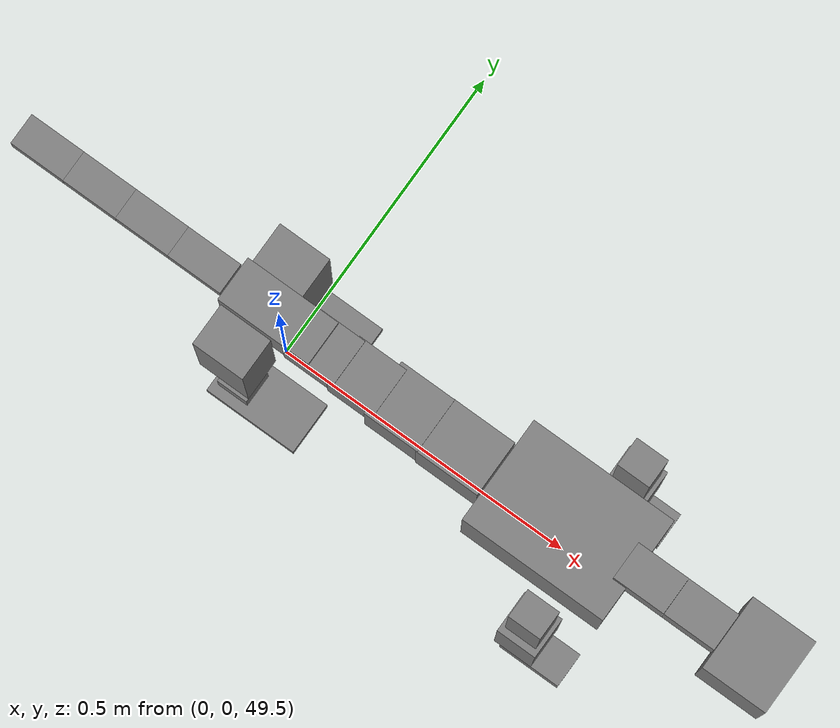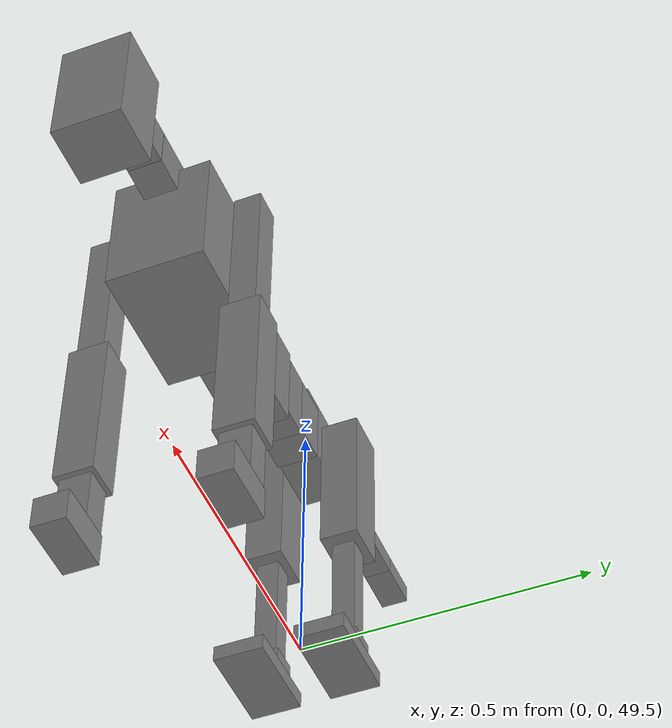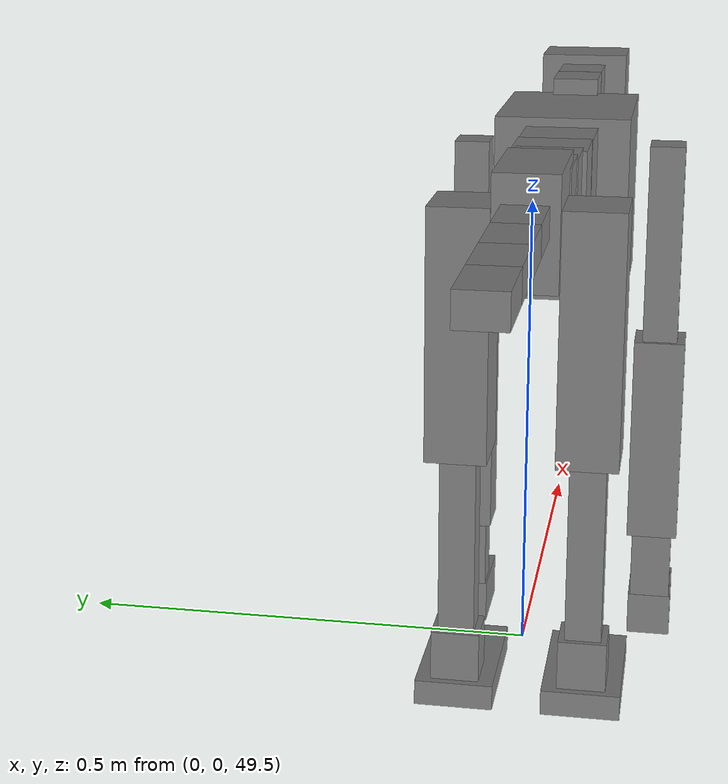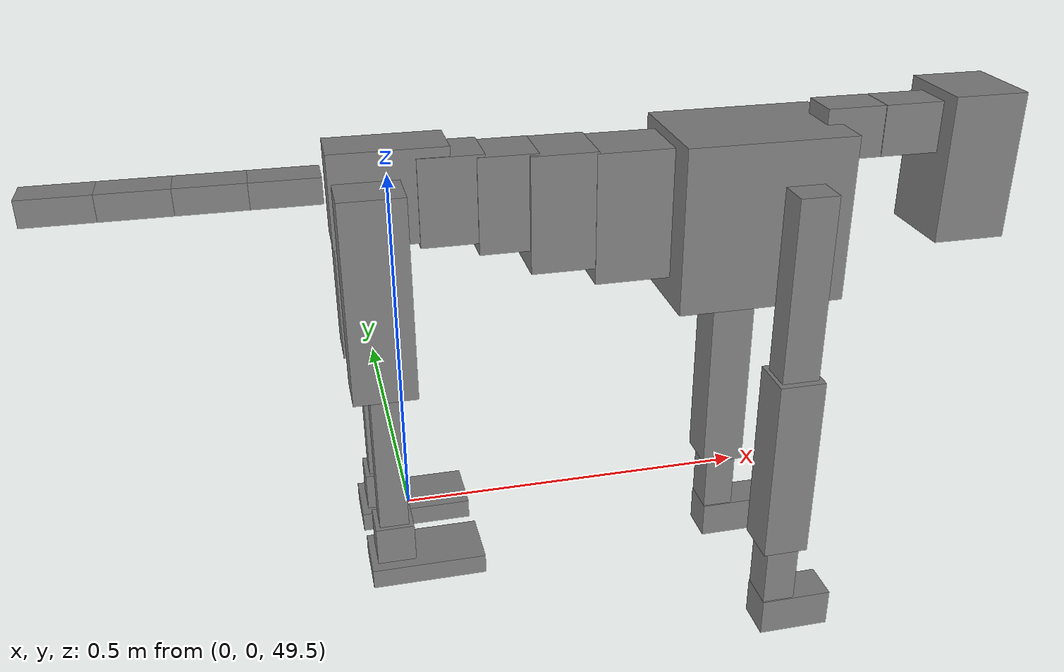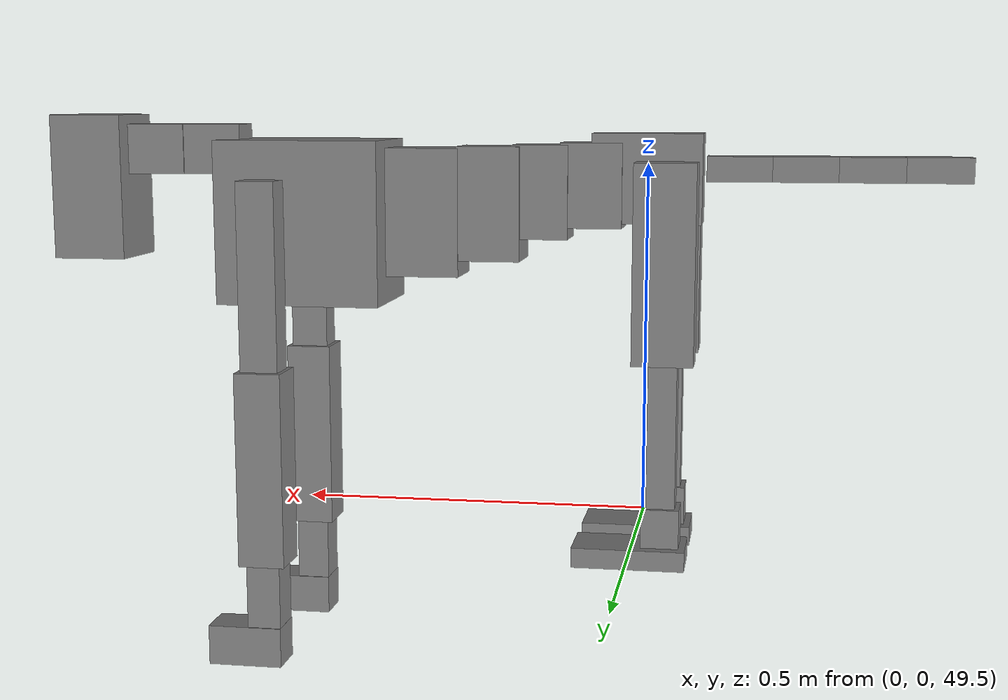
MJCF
<mujoco model="dog">

    <default>
        <joint armature="0.02" stiffness="1" damping="0.2" limited="true"/>
        <geom condim="3" friction="1 0.05 0.05" margin="0.01"/>
        <motor ctrllimited="true" ctrlrange="-1.0 1.0" forcelimited="true" gear="50"/>
    </default>

    <compiler inertiafromgeom="true" angle="radian"/>

    <option timestep="0.016" iterations="50" tolerance="1e-10" solver="Newton" jacobian="dense" cone="pyramidal"/>

    <size nconmax="20000" njmax="60000" nstack="5000000"/>
    <visual>
        <map force="0.1" zfar="30"/>
        <rgba haze="0.15 0.25 0.35 1"/>
        <quality shadowsize="2048"/>
        <global offwidth="800" offheight="800"/>
    </visual>

    <asset>
        <texture type="skybox" builtin="gradient" rgb1="0.3 0.5 0.7" rgb2="0 0 0" width="512" height="512"/>
        <texture name="texplane" type="2d" builtin="checker" rgb1=".2 .3 .4" rgb2=".1 0.15 0.2" width="512" height="512"
                 mark="cross" markrgb=".8 .8 .8"/>
        <texture name="texgeom" type="cube" builtin="flat" mark="cross" width="127" height="1278" rgb1="0.8 0.6 0.4"
                 rgb2="0.8 0.6 0.4" markrgb="1 1 1" random="0.01"/>

        <material name="matplane" reflectance="0.3" texture="texplane" texrepeat="1 1" texuniform="true"/>
        <material name="matgeom" texture="texgeom" texuniform="true" rgba="0.8 0.6 .4 1"/>
    </asset>

    <worldbody>
        <geom name="floor" pos="0 0 0" size="0 0 .25" type="plane" material="matplane" condim="3"/>

        <light directional="false" diffuse=".2 .2 .2" specular="0 0 0" pos="0 0 5" dir="0 0 -1" castshadow="false"/>
        <light mode="targetbodycom" target="torso" directional="false" diffuse=".8 .8 .8" specular="0.3 0.3 0.3"
               pos="0 0 4.0" dir="0 0 -1"/>

        <body name="root" pos="0 0 50">
            <freejoint name="root_1"/>
            <geom type="box" pos="0 0 -0.02" size="0.0774  0.0358  0.063" density="2030"/>

            <body name="spine1" pos="0.054 0 0">
                <joint name="spine1_y" axis="0 1 0" range="0 0.7" limited="true"/>
                <geom type="box" pos="0.02375 0 -0.03" size="0.04375  0.0375  0.05985" density="2030"/>

                <body name="spine2" pos="0.0612 0 0">
                    <joint name="spine2_y" axis="0 1 0" range="-0.15 0.15" limited="true"/>
                    <geom type="box" pos="0.03555  0  -0.04" size="0.04055  0.039  0.06615" density="2030"/>

                    <body name="spine3" pos="0.0730 0 0">
                        <joint name="spine3_y" axis="0 1 0" range="-0.15 0.15" limited="true"/>
                        <geom type="box" pos="0.03555  0  -0.057" size="0.04555  0.0445  0.081" density="2030"/>

                        <body name="spine4" pos="0.0780 0 0">
                            <joint name="spine4_y" axis="0 1 0" range="-0.15 0.15" limited="true"/>
                            <geom type="box" pos="0.05265  0  -0.07" size="0.05265  0.045  0.09135" density="2030"/>

                            <body name="torso" pos="0.1082 0 0">
                                <joint name="torso_y" axis="0 1 0" range="-0.15 0.15" limited="true"/>
                                <geom type="box" pos="0.11925  0  -0.085" size="0.11925  0.085  0.11745"
                                      density="2030"/>

                                <body name="neck1" pos="0.2160  0   0.0180">
                                    <joint name="neck1_y" axis="0 1 0" range="-1.2  -1" limited="true"/>
                                    <geom type="box" pos="0.0423  0  0" size="0.0423  0.03  0.036" density="2325"/>

                                    <body name="neck2" pos="0.0853  0  0">
                                        <joint name="neck2_y" axis="0 1 0" range="0.1  0" limited="true"/>
                                        <geom type="box" pos="0.0423  0  0" size="0.0423  0.03  0.036" density="2325"/>

                                        <body name="head" pos="0.0853  0  0">
                                            <joint name="head_y" axis="0 1 0" range="-0.3  -0.2" limited="true"/>
                                            <geom type="box" pos="0.0531  0  -0.055" size="0.0531  0.06  0.1044"
                                                  density="4030"/>

                                        </body>
                                    </body>
                                </body>

                                <body name="front_shoulder" pos="0.156  0   -0.0480">
                                    <joint name="front_shoulder_y" axis="0 1 0" range="-1 1.5" limited="true"/>
                                    <geom type="box" pos="0 0.13 -0.1203" size="0.0272  0.0233  0.1469" density="1158"/>
                                    <geom type="box" pos="0 -0.13 -0.1203" size="0.0272  0.0233  0.1469"
                                          density="1158"/>

                                    <body name="front_elbow" pos="0  0  -0.2405">
                                        <joint name="front_elbow_y" axis="0 1 0" range="-2 0" limited="true"/>
                                        <geom type="box" pos="0 0.13 -0.1400" size="0.0334  0.0341  0.1400"
                                              density="1081"/>
                                        <geom type="box" pos="0 -0.13 -0.1400" size="0.0334  0.0341  0.1400"
                                              density="1081"/>

                                        <body name="front_wrist" pos="0  0  -0.2801">
                                            <joint name="front_wrist_y" axis="0 1 0" range="-0.2 0" limited="true"/>
                                            <geom type="box" pos="0 0.13 -0.0534" size="0.0242  0.0269  0.0665"
                                                  density="1664"/>
                                            <geom type="box" pos="0 -0.13 -0.0534" size="0.0242  0.0269  0.0665"
                                                  density="1664"/>

                                            <body name="front_finger_end" pos="0  0  -0.1067">
                                                <joint name="front_finger_y" axis="0 1 0" range="-0.4 1"
                                                       limited="true"/>
                                                <geom type="box" pos="0.0292  0.13  -0.0138"
                                                      size="0.0535  0.0292  0.0288" density="1515"/>
                                                <geom type="box" pos="0.0292  -0.13  -0.0138"
                                                      size="0.0535  0.0292  0.0288" density="1515"/>

                                            </body>

                                        </body>
                                    </body>
                                </body>

                            </body>
                        </body>
                    </body>
                </body>
            </body>

            <body name="back_hip" pos="-0.03 0 -0.018">
                <joint name="back_hip_y" axis="0 1 0" range="-1.5 0.3" limited="true"/>
                <geom type="box" pos="0 0.07 -0.1164" size="0.0429  0.0336  0.1392" density="1154"/>
                <geom type="box" pos="0 -0.07 -0.1164" size="0.0429  0.0336  0.1392" density="1154"/>

                <body name="back_knee" pos="0  0  -0.2328">
                    <joint name="back_knee_y" axis="0 1 0" range="0 2.8" limited="true"/>
                    <geom type="box" pos="0 0.07 -0.1190" size="0.0202  0.0199  0.1346" density="1227"/>
                    <geom type="box" pos="0 -0.07 -0.1190" size="0.0202  0.0199  0.1346" density="1227"/>

                    <body name="back_ankle" pos="0  0  -0.2380">
                        <joint name="back_ankle_y" axis="0 1 0" range="-2.2 0" limited="true"/>
                        <geom type="box" pos="0 0.07 -0.0295" size="0.0267  0.0267  0.0408" density="1284"/>
                        <geom type="box" pos="0 -0.07 -0.0295" size="0.0267  0.0267  0.0408" density="1284"/>

                        <body name="back_toe_end" pos="0  0  -0.0591">
                            <joint name="back_toe_y" axis="0 1 0" range="-0.4 1" limited="true"/>
                            <geom type="box" pos="0.0433  0.07  0.0009" size="0.0794  0.0433  0.0141" density="1515"/>
                            <geom type="box" pos="0.0433  -0.07  0.0009" size="0.0794  0.0433  0.0141" density="1515"/>

                        </body>
                    </body>
                </body>
            </body>

            <body name="tail1" pos="-0.074 0 -0.006">
                <joint name="tail1_y" axis="0 1 0" range="-0.2 0.2" limited="true"/>
                <geom type="box" pos="-0.0536  0  0" size="0.045  0.025  0.0175" density="1587"/>

                <body name="tail2" pos="-0.09 0 0">
                    <joint name="tail2_y" axis="0 1 0" range="-0.2 0.2" limited="true"/>
                    <geom type="box" pos="-0.0536  0  0" size="0.045  0.025  0.0175" density="1587"/>

                    <body name="tail3" pos="-0.09 0 0">
                        <joint name="tail3_y" axis="0 1 0" range="-0.2 0.2" limited="true"/>
                        <geom type="box" pos="-0.0536  0  0" size="0.045  0.025  0.0175" density="1587"/>

                        <body name="tail4" pos="-0.09 0 0">
                            <joint name="tail4_y" axis="0 1 0" range="-0.2 0.2" limited="true"/>
                            <geom type="box" pos="-0.0536  0  0" size="0.045  0.025  0.0175" density="1587"/>

                        </body>
                    </body>
                </body>
            </body>
        </body>
    </worldbody>

    <actuator>
        <motor joint="spine1_y" forcerange="-150 150     "/>
        <motor joint="spine2_y" forcerange="-150 150     "/>
        <motor joint="spine3_y" forcerange="-150 150     "/>
        <motor joint="spine4_y" forcerange="-150 150     "/>
        <motor joint="torso_y" forcerange="-150 150     "/>
        <motor joint="neck1_y" forcerange="-100 100       "/>
        <motor joint="neck2_y" forcerange="-100 100       "/>
        <motor joint="head_y" forcerange="-150 150       "/>
        <motor joint="front_shoulder_y" forcerange="-102.76 152.31"/>
        <motor joint="front_elbow_y" forcerange="-183.90 164.39"/>
        <motor joint="front_wrist_y" forcerange="-94.94 119.87"/>
        <motor joint="front_finger_y" forcerange="-25.42 90.23"/>
        <motor joint="back_hip_y" forcerange="-379.12 269.32"/>
        <motor joint="back_knee_y" forcerange="-246.19 243.73"/>
        <motor joint="back_angle_y" forcerange="-185.40 142.17"/>
        <motor joint="back_toe_y" forcerange="-139.50 126.92"/>
        <motor joint="tail1_y" forcerange="-50 50     "/>
        <motor joint="tail2_y" forcerange="-50 50     "/>
        <motor joint="tail3_y" forcerange="-50 50     "/>
        <motor joint="tail4_y" forcerange="-50 50     "/>
    </actuator>
</mujoco>
